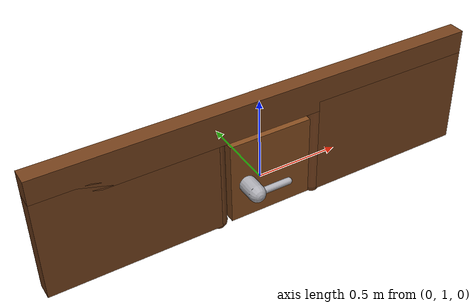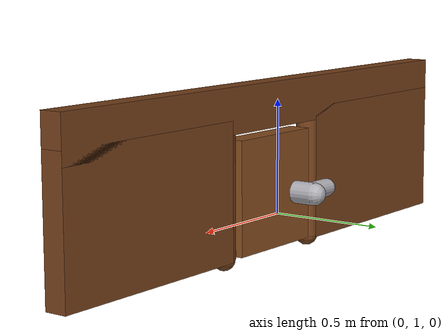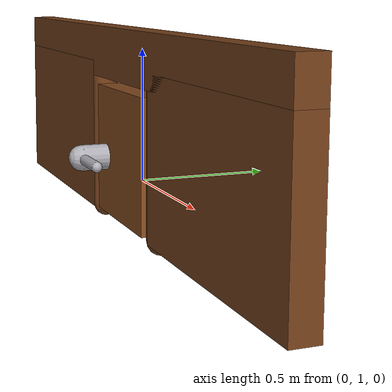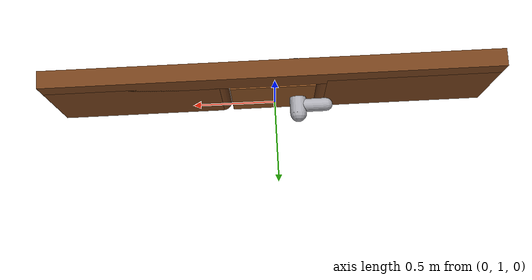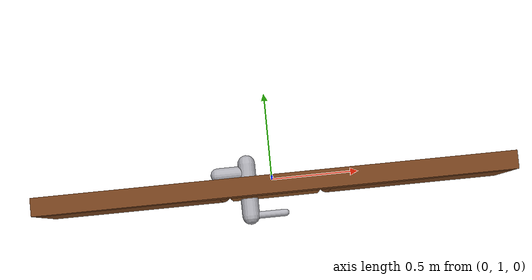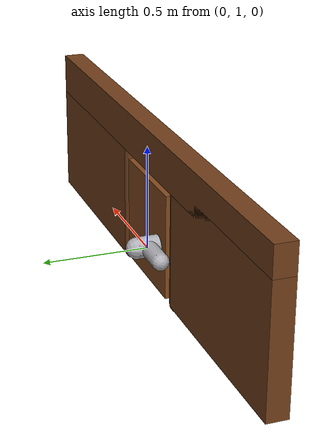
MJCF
<mujoco>
  <default>
    <default class="cube">
      <geom friction=".3 0.05" conaffinity="2" condim="3"/>
    </default>
  </default>

  <asset>
    <texture name="cube" type="cube" fileup="reorientation_cube_textures/fileup.png"
      fileback="reorientation_cube_textures/fileback.png" filedown="reorientation_cube_textures/filedown.png"
      filefront="reorientation_cube_textures/filefront.png" fileleft="reorientation_cube_textures/fileleft.png"
      fileright="reorientation_cube_textures/fileright.png"/>
    <material name="cube" texture="cube"/>
    <texture name="graycube" type="cube" fileup="reorientation_cube_textures/grayup.png"
      fileback="reorientation_cube_textures/grayback.png" filedown="reorientation_cube_textures/graydown.png"
      filefront="reorientation_cube_textures/grayfront.png" fileleft="reorientation_cube_textures/grayleft.png"
      fileright="reorientation_cube_textures/grayright.png"/>
    <material name="graycube" texture="graycube"/>

    <!-- Door textures -->
    <texture type="cube" name="wood" file="resources/textures/wood.png" />
    <texture type="cube" name="foil" file="resources/textures/silverRaw.png" />
    <texture type="cube" name="woodb" file="resources/textures/woodb.png" />

    <!-- Materials for door -->
    <material name="MatFoil" texture="foil" specular="1" shininess="0.3" rgba="0.9 0.9 0.9 1"/>
    <material name="MatWood" texture="wood" texrepeat="3 3" specular="0.4" shininess="0.1" rgba="0.75 0.6 0.4 1"/>
    <material name="MatWoodB" texture="woodb" specular="1" shininess="0.3" rgba="0.65 0.5 0.35 1"/>
  </asset>

  <worldbody>
    <!-- Door frame and door (no table) -->

    <body name="frame" pos="-0.28 0.95 0.1" user="1001 0 2002 -0.4 -0.1 0.252 0 0.3 0.45">
      <inertial pos="0.29 0 0" quat="0.5 0.5 0.5 0.5" mass="7.85398" diaginertia="0.923301 0.764585 0.168533" />
      <geom size="0.50 0.05 0.30" pos="-0.52 0 0.04" type="box" material="MatWoodB"/>
      <geom size="0.05 0.3" pos="-0.02 0 0.05" type="capsule" material="MatWoodB"/>
      <geom size="0.05 0.3" pos="0.6 0 0.05" type="capsule" material="MatWoodB"/>
      <geom size="0.50 0.05 0.30" pos="1.1 0 0.04" type="box" material="MatWoodB"/>
      <geom size="1.31 0.05 0.10" pos="0.29 0 0.38" type="box" material="MatWoodB"/>
      <site name="S_handle_target" pos="0.75 -0.5 -.18" size="0.025" group='3'/>

      <!-- Hinged door leaf -->
      <body name="door" pos="0.29 0 0">
        <inertial pos="0.0296816 -0.00152345 0" quat="0.701072 0 0 0.713091" mass="2.43455" diaginertia="0.0913751 0.0521615 0.043714" />
        <joint name="door_hinge" pos="0.31 0 0" axis="0 0 1" range="0 1.57" damping="1" frictionloss="2" />
        <geom size="0.25 0.05 0.25" type="box" friction="1 1 1" material="MatWood" contype="1" conaffinity="1" />

        <!-- Door handle latch assembly -->
        <body name="latch" pos="-0.15 0 -0.025">
          <inertial pos="-0.017762 0.0138544 0" quat="0.365653 0.605347 -0.36522 0.605365" mass="3.53743" diaginertia="0.0483771 0.0410001 0.0111013" />
          <joint name="latch" pos="0 0 0" axis="0 1 0" range="0 1.8" frictionloss="5" />
          <geom size="0.05 0.15" quat="0.707388 0.706825 0 0" type="capsule" material="MatFoil" />
          <geom size="0.02 0.1" pos="0.1 -0.15 0" quat="0.707388 0 0.706825 0" type="capsule" material="MatFoil" />
          <geom size="0.04 0.07" pos="-0.1 0.1 0" quat="0.707388 0 0.706825 0" type="capsule" material="MatFoil" />
          <site name="S_handle" pos="0.15 -0.15 0" size="0.025" group='3'/>
        </body>
      </body>
    </body>
  </worldbody>
</mujoco>
